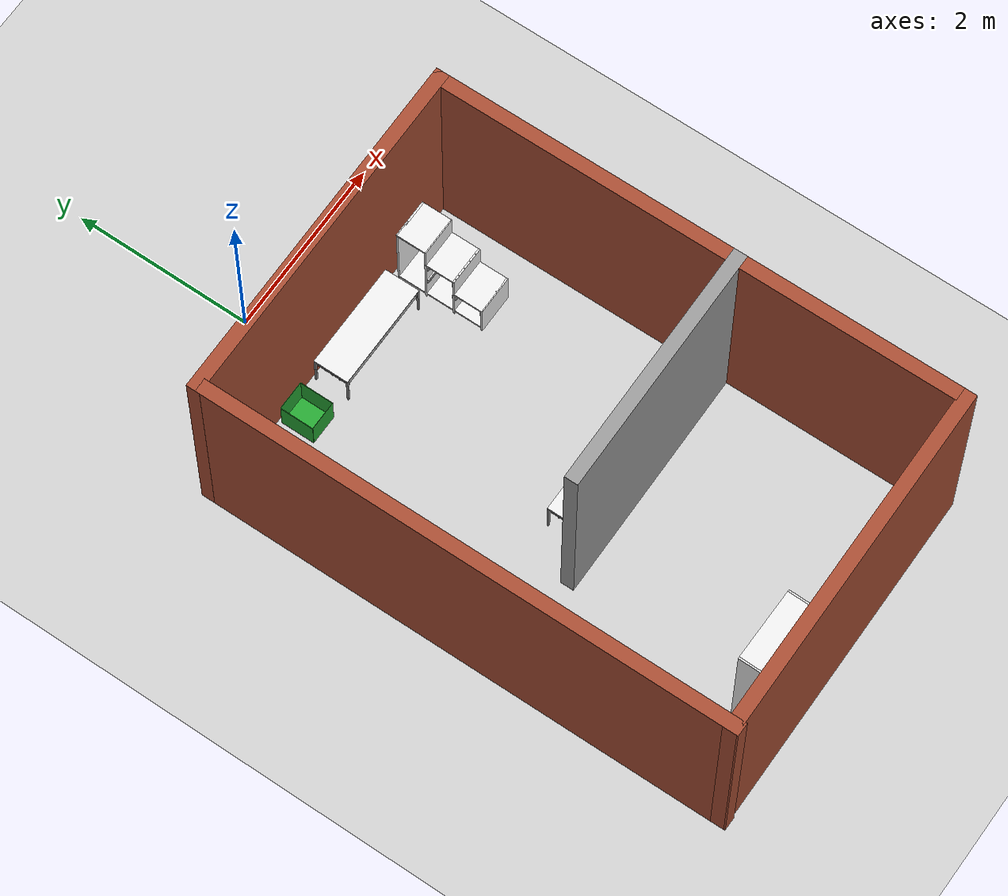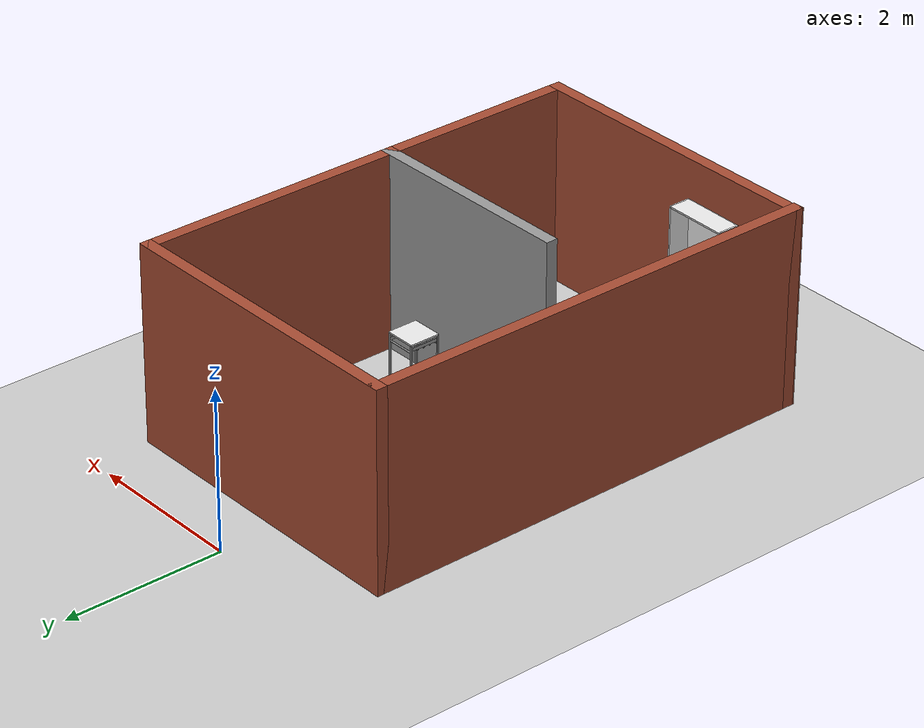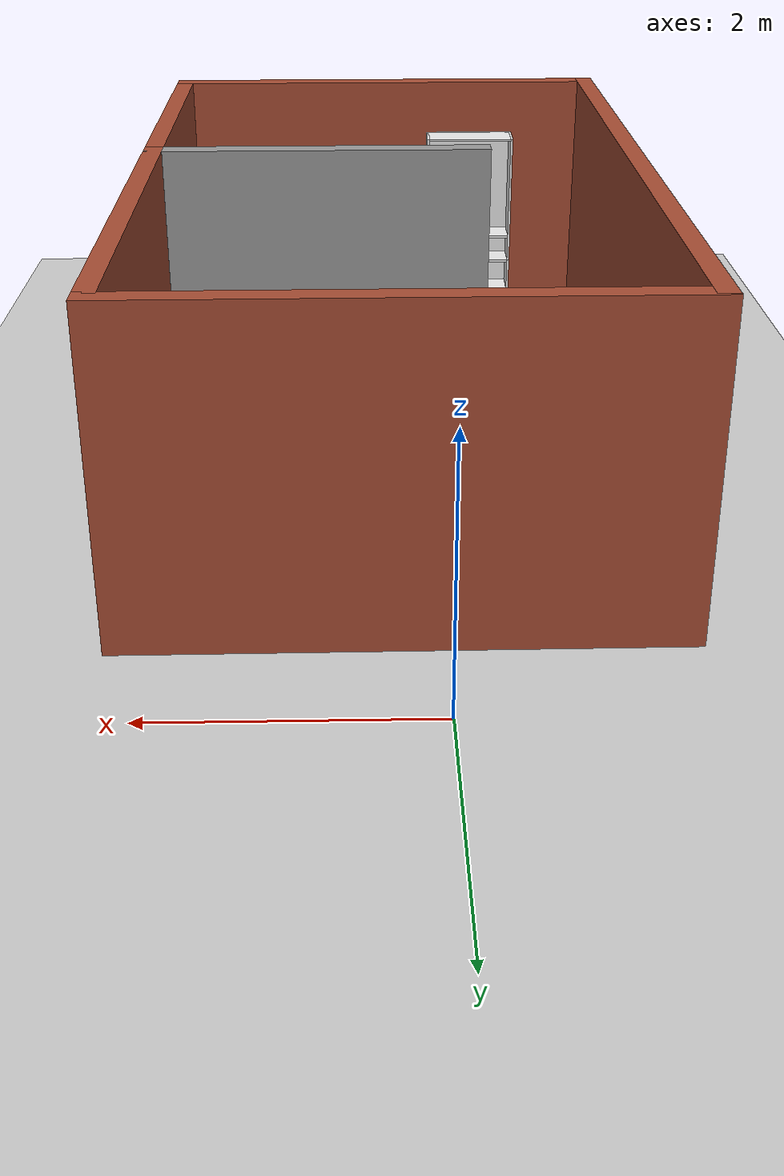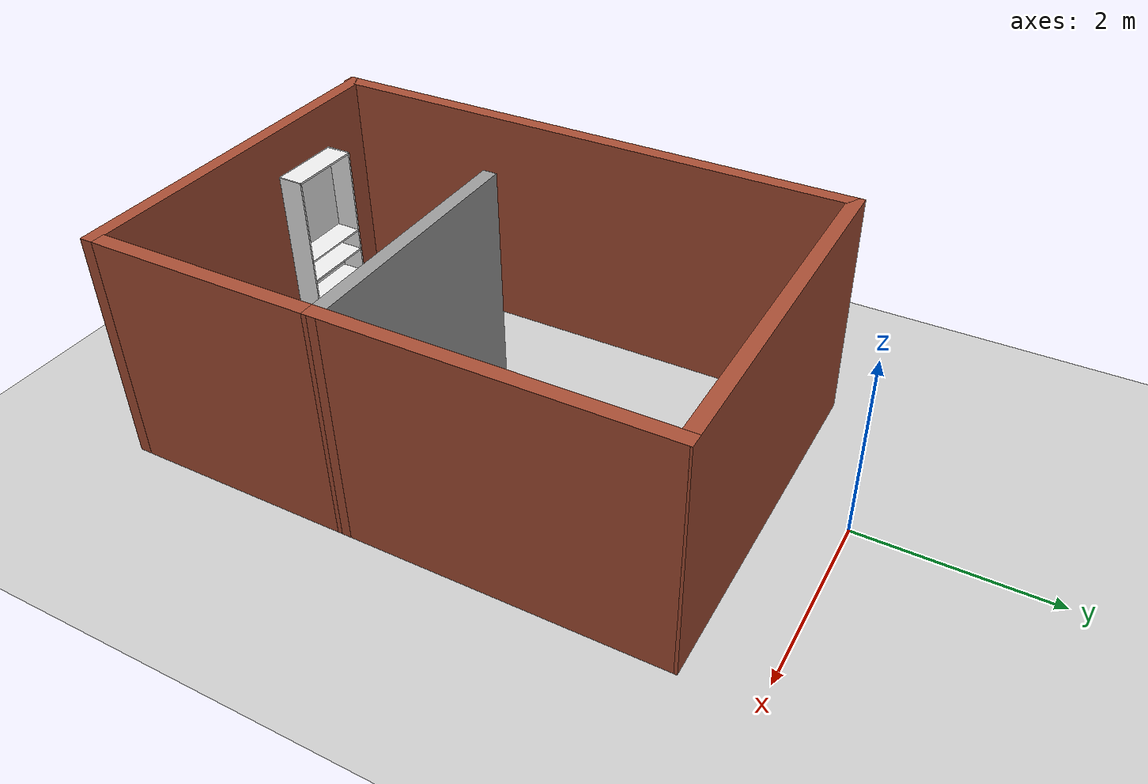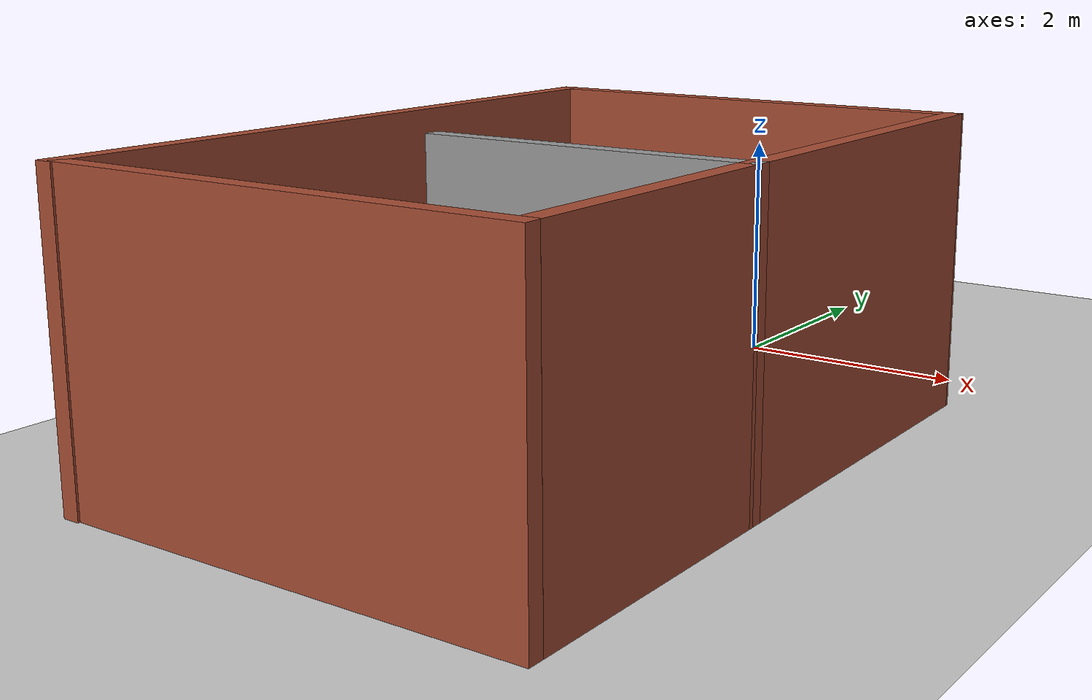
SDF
<sdf version="1.7">
 <world name="default">
  <light name="sun" type="directional">
   <pose>0 0 10 0 -0 0</pose>
   <diffuse>0.8 0.8 0.8 1</diffuse>
   <specular>0.2 0.2 0.2 1</specular>
   <attenuation>
    <range>1000</range>
    <constant>0.9</constant>
    <linear>0.01</linear>
    <quadratic>0.001</quadratic>
   </attenuation>
   <direction>-0.5 0.1 -0.9</direction>
   <spot><inner_angle>0</inner_angle><outer_angle>0</outer_angle><falloff>0</falloff></spot>
  </light>
  <model name="ground_plane">
   <static>1</static>
   <link name="link">
    <collision name="collision">
     <geometry><plane><normal>0 0 1</normal><size>100 100</size></plane></geometry>
     <surface><friction><ode><mu>100</mu><mu2>50</mu2></ode></friction></surface>
    </collision>
    <visual name="visual">
     <cast_shadows>0</cast_shadows>
     <geometry><plane><normal>0 0 1</normal><size>100 100</size></plane></geometry>
     <material>
      <script><uri>file://media/materials/scripts/gazebo.material</uri><name>Gazebo/Grey</name></script>
     </material>
    </visual>
   </link>
  </model>
  <gravity>0 0 -9.8</gravity>
  <magnetic_field>6e-06 2.3e-05 -4.2e-05</magnetic_field>
  <atmosphere type="adiabatic"/>
  <physics type="ode">
   <max_step_size>0.001</max_step_size>
   <real_time_factor>1</real_time_factor>
   <real_time_update_rate>1000</real_time_update_rate>
  </physics>
  <scene><ambient>0.4 0.4 0.4 1</ambient><background>0.7 0.7 0.7 1</background><shadows>1</shadows></scene>
  <spherical_coordinates>
   <surface_model>EARTH_WGS84</surface_model>
   <latitude_deg>0</latitude_deg>
   <longitude_deg>0</longitude_deg>
   <elevation>0</elevation>
   <heading_deg>0</heading_deg>
  </spherical_coordinates>
  <model name="robotic_lab">
   <pose>0.289032 -3.73876 0 0 0 -1.56694</pose>
   <link name="Wall_0">
    <collision name="Wall_0_Collision">
     <geometry><box><size>6 0.15 2.5</size></box></geometry>
     <pose>0 0 1.25 0 -0 0</pose>
    </collision>
    <visual name="Wall_0_Visual">
     <pose>0 0 1.25 0 -0 0</pose>
     <geometry><box><size>6 0.15 2.5</size></box></geometry>
     <material>
      <script><uri>file://media/materials/scripts/gazebo.material</uri><name>Gazebo/Bricks</name></script>
      <ambient>1 1 1 1</ambient>
     </material>
     <meta><layer>0</layer></meta>
    </visual>
    <pose>0.008745 -1.92514 0 0 -0 0</pose>
   </link>
   <link name="Wall_2">
    <collision name="Wall_2_Collision">
     <geometry><box><size>4 0.15 2.5</size></box></geometry>
     <pose>0 0 1.25 0 -0 0</pose>
    </collision>
    <visual name="Wall_2_Visual">
     <pose>0 0 1.25 0 -0 0</pose>
     <geometry><box><size>4 0.15 2.5</size></box></geometry>
     <material>
      <script><uri>file://media/materials/scripts/gazebo.material</uri><name>Gazebo/Bricks</name></script>
      <ambient>1 1 1 1</ambient>
     </material>
     <meta><layer>0</layer></meta>
    </visual>
    <pose>-2.93375 -0.000141 0 0 -0 1.5708</pose>
   </link>
   <link name="Wall_3">
    <collision name="Wall_3_Collision">
     <geometry><box><size>3.5 0.15 2.5</size></box></geometry>
     <pose>0 0 1.25 0 -0 0</pose>
    </collision>
    <visual name="Wall_3_Visual">
     <pose>0 0 1.25 0 -0 0</pose>
     <geometry><box><size>3.5 0.15 2.5</size></box></geometry>
     <material>
      <script><uri>file://media/materials/scripts/gazebo.material</uri><name>Gazebo/Bricks</name></script>
      <ambient>1 1 1 1</ambient>
     </material>
     <meta><layer>0</layer></meta>
    </visual>
    <pose>-1.25869 1.925 0 0 -0 8.2e-05</pose>
   </link>
   <link name="Wall_4">
    <collision name="Wall_4_Collision">
     <geometry><box><size>2.8 0.15 2.5</size></box></geometry>
     <pose>0 0 1.25 0 -0 0</pose>
    </collision>
    <visual name="Wall_4_Visual">
     <pose>0 0 1.25 0 -0 0</pose>
     <geometry><box><size>2.8 0.15 2.5</size></box></geometry>
     <material>
      <script><uri>file://media/materials/scripts/gazebo.material</uri><name>Gazebo/Grey</name></script>
      <ambient>1 1 1 1</ambient>
     </material>
     <meta><layer>0</layer></meta>
    </visual>
    <pose>0.416369 0.600135 0 0 -0 -1.5708</pose>
   </link>
   <link name="Wall_6">
    <collision name="Wall_6_Collision">
     <geometry><box><size>2.515 0.15 2.5</size></box></geometry>
     <pose>0 0 1.25 0 -0 0</pose>
    </collision>
    <visual name="Wall_6_Visual">
     <pose>0 0 1.25 0 -0 0</pose>
     <geometry><box><size>2.515 0.15 2.5</size></box></geometry>
     <material>
      <script><uri>file://media/materials/scripts/gazebo.material</uri><name>Gazebo/Bricks</name></script>
      <ambient>1 1 1 1</ambient>
     </material>
     <meta><layer>0</layer></meta>
    </visual>
    <pose>1.59887 1.92514 0 0 -0 0</pose>
   </link>
   <link name="Wall_8">
    <collision name="Wall_8_Collision">
     <geometry><box><size>4 0.15 2.5</size></box></geometry>
     <pose>0 0 1.25 0 -0 0</pose>
    </collision>
    <visual name="Wall_8_Visual">
     <pose>0 0 1.25 0 -0 0</pose>
     <geometry><box><size>4 0.15 2.5</size></box></geometry>
     <material>
      <script><uri>file://media/materials/scripts/gazebo.material</uri><name>Gazebo/Bricks</name></script>
      <ambient>1 1 1 1</ambient>
     </material>
     <meta><layer>0</layer></meta>
    </visual>
    <pose>2.91626 -0.000141 0 0 -0 1.5708</pose>
   </link>
   <static>1</static>
  </model>
  <model name="wrc_bin_black">
   <static>1</static>
   <link name="link">
    <inertial><mass>1</mass></inertial>
    <collision name="bottom">
     <pose>0 0 0.002 0 -0 0</pose>
     <geometry><box><size>0.33 0.38 0.004</size></box></geometry>
    </collision>
    <visual name="bottom_v">
     <pose>0 0 0.002 0 -0 0</pose>
     <geometry><box><size>0.33 0.38 0.004</size></box></geometry>
     <material>
      <script><uri>file://media/materials/scripts/gazebo.material</uri><name>Gazebo/Black</name></script>
     </material>
    </visual>
    <collision name="front">
     <pose>0 0.19 0.165 0 -0 0</pose>
     <geometry><box><size>0.33 0.004 0.33</size></box></geometry>
    </collision>
    <visual name="front_v">
     <pose>0 0.19 0.165 0 -0 0</pose>
     <geometry><box><size>0.33 0.004 0.33</size></box></geometry>
     <material>
      <script><uri>file://media/materials/scripts/gazebo.material</uri><name>Gazebo/Black</name></script>
     </material>
    </visual>
    <collision name="back">
     <pose>0 -0.19 0.165 0 -0 0</pose>
     <geometry><box><size>0.33 0.004 0.33</size></box></geometry>
    </collision>
    <visual name="back_v">
     <pose>0 -0.19 0.165 0 -0 0</pose>
     <geometry><box><size>0.33 0.004 0.33</size></box></geometry>
     <material>
      <script><uri>file://media/materials/scripts/gazebo.material</uri><name>Gazebo/Black</name></script>
     </material>
    </visual>
    <collision name="left">
     <pose>0.165 0 0.165 0 -0 0</pose>
     <geometry><box><size>0.004 0.38 0.33</size></box></geometry>
    </collision>
    <visual name="left_v">
     <pose>0.165 0 0.165 0 -0 0</pose>
     <geometry><box><size>0.004 0.38 0.33</size></box></geometry>
     <material>
      <script><uri>file://media/materials/scripts/gazebo.material</uri><name>Gazebo/Black</name></script>
     </material>
    </visual>
    <collision name="right">
     <pose>-0.165 0 0.165 0 -0 0</pose>
     <geometry><box><size>0.004 0.38 0.33</size></box></geometry>
    </collision>
    <visual name="right_v">
     <pose>-0.165 0 0.165 0 -0 0</pose>
     <geometry><box><size>0.004 0.38 0.33</size></box></geometry>
     <material>
      <script><uri>file://media/materials/scripts/gazebo.material</uri><name>Gazebo/Black</name></script>
     </material>
    </visual>
   </link>
   <pose>-1.0023 -1.10353 0 0 -0 0</pose>
  </model>
  <model name="wrc_bin_green">
   <static>1</static>
   <link name="link">
    <inertial><mass>1</mass></inertial>
    <collision name="bottom">
     <pose>0 0 0.002 0 -0 0</pose>
     <geometry><box><size>0.33 0.38 0.004</size></box></geometry>
    </collision>
    <visual name="bottom_v">
     <pose>0 0 0.002 0 -0 0</pose>
     <geometry><box><size>0.33 0.38 0.004</size></box></geometry>
     <material>
      <script><uri>file://media/materials/scripts/gazebo.material</uri><name>Gazebo/Green</name></script>
     </material>
    </visual>
    <collision name="front">
     <pose>0 0.19 0.165 0 -0 0</pose>
     <geometry><box><size>0.33 0.004 0.33</size></box></geometry>
    </collision>
    <visual name="front_v">
     <pose>0 0.19 0.165 0 -0 0</pose>
     <geometry><box><size>0.33 0.004 0.33</size></box></geometry>
     <material>
      <script><uri>file://media/materials/scripts/gazebo.material</uri><name>Gazebo/Green</name></script>
     </material>
    </visual>
    <collision name="back">
     <pose>0 -0.19 0.165 0 -0 0</pose>
     <geometry><box><size>0.33 0.004 0.33</size></box></geometry>
    </collision>
    <visual name="back_v">
     <pose>0 -0.19 0.165 0 -0 0</pose>
     <geometry><box><size>0.33 0.004 0.33</size></box></geometry>
     <material>
      <script><uri>file://media/materials/scripts/gazebo.material</uri><name>Gazebo/Green</name></script>
     </material>
    </visual>
    <collision name="left">
     <pose>0.165 0 0.165 0 -0 0</pose>
     <geometry><box><size>0.004 0.38 0.33</size></box></geometry>
    </collision>
    <visual name="left_v">
     <pose>0.165 0 0.165 0 -0 0</pose>
     <geometry><box><size>0.004 0.38 0.33</size></box></geometry>
     <material>
      <script><uri>file://media/materials/scripts/gazebo.material</uri><name>Gazebo/Green</name></script>
     </material>
    </visual>
    <collision name="right">
     <pose>-0.165 0 0.165 0 -0 0</pose>
     <geometry><box><size>0.004 0.38 0.33</size></box></geometry>
    </collision>
    <visual name="right_v">
     <pose>-0.165 0 0.165 0 -0 0</pose>
     <geometry><box><size>0.004 0.38 0.33</size></box></geometry>
     <material>
      <script><uri>file://media/materials/scripts/gazebo.material</uri><name>Gazebo/Green</name></script>
     </material>
    </visual>
   </link>
   <pose>-0.500221 -1.11173 0 0 -0 0</pose>
  </model>
  <model name="wrc_long_table">
   <static>1</static>
   <link name="link">
    <inertial><mass>1</mass></inertial>
    <collision name="top">
     <pose>0 0 0.39 0 -0 0</pose>
     <geometry><box><size>1.2 0.4 0.02</size></box></geometry>
    </collision>
    <visual name="top_v">
     <pose>0 0 0.39 0 -0 0</pose>
     <geometry><box><size>1.2 0.4 0.02</size></box></geometry>
     <material>
      <script><uri>file://media/materials/scripts/gazebo.material</uri><name>Gazebo/White</name></script>
     </material>
    </visual>
    <collision name="leg1">
     <pose>0.59 0.19 0.185 0 -0 0</pose>
     <geometry><box><size>0.02 0.02 0.4</size></box></geometry>
    </collision>
    <visual name="leg1_v">
     <pose>0.59 0.19 0.185 0 -0 0</pose>
     <geometry><box><size>0.02 0.02 0.4</size></box></geometry>
     <material>
      <script><uri>file://media/materials/scripts/gazebo.material</uri><name>Gazebo/Gray</name></script>
     </material>
    </visual>
    <collision name="leg2">
     <pose>-0.59 0.19 0.185 0 -0 0</pose>
     <geometry><box><size>0.02 0.02 0.4</size></box></geometry>
    </collision>
    <visual name="leg2_v">
     <pose>-0.59 0.19 0.185 0 -0 0</pose>
     <geometry><box><size>0.02 0.02 0.4</size></box></geometry>
     <material>
      <script><uri>file://media/materials/scripts/gazebo.material</uri><name>Gazebo/Gray</name></script>
     </material>
    </visual>
    <collision name="leg3">
     <pose>0.59 -0.19 0.185 0 -0 0</pose>
     <geometry><box><size>0.02 0.02 0.4</size></box></geometry>
    </collision>
    <visual name="leg3_v">
     <pose>0.59 -0.19 0.185 0 -0 0</pose>
     <geometry><box><size>0.02 0.02 0.4</size></box></geometry>
     <material>
      <script><uri>file://media/materials/scripts/gazebo.material</uri><name>Gazebo/Gray</name></script>
     </material>
    </visual>
    <collision name="leg4">
     <pose>-0.59 -0.19 0.185 0 -0 0</pose>
     <geometry><box><size>0.02 0.02 0.4</size></box></geometry>
    </collision>
    <visual name="leg4_v">
     <pose>-0.59 -0.19 0.185 0 -0 0</pose>
     <geometry><box><size>0.02 0.02 0.4</size></box></geometry>
     <material>
      <script><uri>file://media/materials/scripts/gazebo.material</uri><name>Gazebo/Gray</name></script>
     </material>
    </visual>
    <collision name="side_panel1">
     <pose>0.575 0 0.32 0 -0 0</pose>
     <geometry><box><size>0.01 0.4 0.04</size></box></geometry>
    </collision>
    <visual name="side_panel1_v">
     <pose>0.575 0 0.32 0 -0 0</pose>
     <geometry><box><size>0.01 0.4 0.04</size></box></geometry>
     <material>
      <script><uri>file://media/materials/scripts/gazebo.material</uri><name>Gazebo/Gray</name></script>
     </material>
    </visual>
    <collision name="side_panel2">
     <pose>-0.575 0 0.32 0 -0 0</pose>
     <geometry><box><size>0.01 0.4 0.04</size></box></geometry>
    </collision>
    <visual name="side_panel2_v">
     <pose>-0.575 0 0.32 0 -0 0</pose>
     <geometry><box><size>0.01 0.4 0.04</size></box></geometry>
     <material>
      <script><uri>file://media/materials/scripts/gazebo.material</uri><name>Gazebo/Gray</name></script>
     </material>
    </visual>
    <collision name="bar1">
     <pose>0 0.2 0.29 0 1.57 0</pose>
     <geometry><cylinder><radius>0.01</radius><length>1.16</length></cylinder></geometry>
    </collision>
    <visual name="bar1_v">
     <pose>0 0.19 0.29 0 1.57 0</pose>
     <geometry><cylinder><radius>0.01</radius><length>1.16</length></cylinder></geometry>
     <material>
      <script><uri>file://media/materials/scripts/gazebo.material</uri><name>Gazebo/Gray</name></script>
     </material>
    </visual>
    <collision name="bar2">
     <pose>0 0.08 0.29 0 1.57 0</pose>
     <geometry><cylinder><radius>0.01</radius><length>1.16</length></cylinder></geometry>
    </collision>
    <visual name="bar2_v">
     <pose>0 0.08 0.29 0 1.57 0</pose>
     <geometry><cylinder><radius>0.01</radius><length>1.16</length></cylinder></geometry>
     <material>
      <script><uri>file://media/materials/scripts/gazebo.material</uri><name>Gazebo/Gray</name></script>
     </material>
    </visual>
    <collision name="bar3">
     <pose>0 0 0.29 0 1.57 0</pose>
     <geometry><cylinder><radius>0.01</radius><length>1.16</length></cylinder></geometry>
    </collision>
    <visual name="bar3_v">
     <pose>0 0 0.29 0 1.57 0</pose>
     <geometry><cylinder><radius>0.01</radius><length>1.16</length></cylinder></geometry>
     <material>
      <script><uri>file://media/materials/scripts/gazebo.material</uri><name>Gazebo/Gray</name></script>
     </material>
    </visual>
    <collision name="bar4">
     <pose>0 -0.08 0.29 0 1.57 0</pose>
     <geometry><cylinder><radius>0.01</radius><length>1.16</length></cylinder></geometry>
    </collision>
    <visual name="bar4_v">
     <pose>0 -0.09 0.29 0 1.57 0</pose>
     <geometry><cylinder><radius>0.01</radius><length>1.16</length></cylinder></geometry>
     <material>
      <script><uri>file://media/materials/scripts/gazebo.material</uri><name>Gazebo/Gray</name></script>
     </material>
    </visual>
    <collision name="bar5">
     <pose>0 -0.18 0.29 0 1.57 0</pose>
     <geometry><cylinder><radius>0.01</radius><length>1.16</length></cylinder></geometry>
    </collision>
    <visual name="bar5_v">
     <pose>0 -0.18 0.29 0 1.57 0</pose>
     <geometry><cylinder><radius>0.01</radius><length>1.16</length></cylinder></geometry>
     <material>
      <script><uri>file://media/materials/scripts/gazebo.material</uri><name>Gazebo/Gray</name></script>
     </material>
    </visual>
   </link>
   <pose>0.499277 -1.11247 0 0 -0 0</pose>
  </model>
  <model name="wrc_long_table_0">
   <static>1</static>
   <link name="link">
    <inertial><mass>1</mass></inertial>
    <collision name="top">
     <pose>0 0 0.39 0 -0 0</pose>
     <geometry><box><size>1.2 0.4 0.02</size></box></geometry>
    </collision>
    <visual name="top_v">
     <pose>0 0 0.39 0 -0 0</pose>
     <geometry><box><size>1.2 0.4 0.02</size></box></geometry>
     <material>
      <script><uri>file://media/materials/scripts/gazebo.material</uri><name>Gazebo/White</name></script>
     </material>
    </visual>
    <collision name="leg1">
     <pose>0.59 0.19 0.185 0 -0 0</pose>
     <geometry><box><size>0.02 0.02 0.4</size></box></geometry>
    </collision>
    <visual name="leg1_v">
     <pose>0.59 0.19 0.185 0 -0 0</pose>
     <geometry><box><size>0.02 0.02 0.4</size></box></geometry>
     <material>
      <script><uri>file://media/materials/scripts/gazebo.material</uri><name>Gazebo/Gray</name></script>
     </material>
    </visual>
    <collision name="leg2">
     <pose>-0.59 0.19 0.185 0 -0 0</pose>
     <geometry><box><size>0.02 0.02 0.4</size></box></geometry>
    </collision>
    <visual name="leg2_v">
     <pose>-0.59 0.19 0.185 0 -0 0</pose>
     <geometry><box><size>0.02 0.02 0.4</size></box></geometry>
     <material>
      <script><uri>file://media/materials/scripts/gazebo.material</uri><name>Gazebo/Gray</name></script>
     </material>
    </visual>
    <collision name="leg3">
     <pose>0.59 -0.19 0.185 0 -0 0</pose>
     <geometry><box><size>0.02 0.02 0.4</size></box></geometry>
    </collision>
    <visual name="leg3_v">
     <pose>0.59 -0.19 0.185 0 -0 0</pose>
     <geometry><box><size>0.02 0.02 0.4</size></box></geometry>
     <material>
      <script><uri>file://media/materials/scripts/gazebo.material</uri><name>Gazebo/Gray</name></script>
     </material>
    </visual>
    <collision name="leg4">
     <pose>-0.59 -0.19 0.185 0 -0 0</pose>
     <geometry><box><size>0.02 0.02 0.4</size></box></geometry>
    </collision>
    <visual name="leg4_v">
     <pose>-0.59 -0.19 0.185 0 -0 0</pose>
     <geometry><box><size>0.02 0.02 0.4</size></box></geometry>
     <material>
      <script><uri>file://media/materials/scripts/gazebo.material</uri><name>Gazebo/Gray</name></script>
     </material>
    </visual>
    <collision name="side_panel1">
     <pose>0.575 0 0.32 0 -0 0</pose>
     <geometry><box><size>0.01 0.4 0.04</size></box></geometry>
    </collision>
    <visual name="side_panel1_v">
     <pose>0.575 0 0.32 0 -0 0</pose>
     <geometry><box><size>0.01 0.4 0.04</size></box></geometry>
     <material>
      <script><uri>file://media/materials/scripts/gazebo.material</uri><name>Gazebo/Gray</name></script>
     </material>
    </visual>
    <collision name="side_panel2">
     <pose>-0.575 0 0.32 0 -0 0</pose>
     <geometry><box><size>0.01 0.4 0.04</size></box></geometry>
    </collision>
    <visual name="side_panel2_v">
     <pose>-0.575 0 0.32 0 -0 0</pose>
     <geometry><box><size>0.01 0.4 0.04</size></box></geometry>
     <material>
      <script><uri>file://media/materials/scripts/gazebo.material</uri><name>Gazebo/Gray</name></script>
     </material>
    </visual>
    <collision name="bar1">
     <pose>0 0.2 0.29 0 1.57 0</pose>
     <geometry><cylinder><radius>0.01</radius><length>1.16</length></cylinder></geometry>
    </collision>
    <visual name="bar1_v">
     <pose>0 0.19 0.29 0 1.57 0</pose>
     <geometry><cylinder><radius>0.01</radius><length>1.16</length></cylinder></geometry>
     <material>
      <script><uri>file://media/materials/scripts/gazebo.material</uri><name>Gazebo/Gray</name></script>
     </material>
    </visual>
    <collision name="bar2">
     <pose>0 0.08 0.29 0 1.57 0</pose>
     <geometry><cylinder><radius>0.01</radius><length>1.16</length></cylinder></geometry>
    </collision>
    <visual name="bar2_v">
     <pose>0 0.08 0.29 0 1.57 0</pose>
     <geometry><cylinder><radius>0.01</radius><length>1.16</length></cylinder></geometry>
     <material>
      <script><uri>file://media/materials/scripts/gazebo.material</uri><name>Gazebo/Gray</name></script>
     </material>
    </visual>
    <collision name="bar3">
     <pose>0 0 0.29 0 1.57 0</pose>
     <geometry><cylinder><radius>0.01</radius><length>1.16</length></cylinder></geometry>
    </collision>
    <visual name="bar3_v">
     <pose>0 0 0.29 0 1.57 0</pose>
     <geometry><cylinder><radius>0.01</radius><length>1.16</length></cylinder></geometry>
     <material>
      <script><uri>file://media/materials/scripts/gazebo.material</uri><name>Gazebo/Gray</name></script>
     </material>
    </visual>
    <collision name="bar4">
     <pose>0 -0.08 0.29 0 1.57 0</pose>
     <geometry><cylinder><radius>0.01</radius><length>1.16</length></cylinder></geometry>
    </collision>
    <visual name="bar4_v">
     <pose>0 -0.09 0.29 0 1.57 0</pose>
     <geometry><cylinder><radius>0.01</radius><length>1.16</length></cylinder></geometry>
     <material>
      <script><uri>file://media/materials/scripts/gazebo.material</uri><name>Gazebo/Gray</name></script>
     </material>
    </visual>
    <collision name="bar5">
     <pose>0 -0.18 0.29 0 1.57 0</pose>
     <geometry><cylinder><radius>0.01</radius><length>1.16</length></cylinder></geometry>
    </collision>
    <visual name="bar5_v">
     <pose>0 -0.18 0.29 0 1.57 0</pose>
     <geometry><cylinder><radius>0.01</radius><length>1.16</length></cylinder></geometry>
     <material>
      <script><uri>file://media/materials/scripts/gazebo.material</uri><name>Gazebo/Gray</name></script>
     </material>
    </visual>
   </link>
   <pose>0.508276 -3.83955 0 0 -0 0</pose>
  </model>
  <model name="wrc_tall_table">
   <static>1</static>
   <link name="link">
    <inertial><mass>1</mass></inertial>
    <collision name="top">
     <pose>0 0 0.59 0 -0 0</pose>
     <geometry><box><size>0.4 0.4 0.02</size></box></geometry>
    </collision>
    <visual name="top_v">
     <pose>0 0 0.59 0 -0 0</pose>
     <geometry><box><size>0.4 0.4 0.02</size></box></geometry>
     <material>
      <script><uri>file://media/materials/scripts/gazebo.material</uri><name>Gazebo/White</name></script>
     </material>
    </visual>
    <collision name="leg1">
     <pose>0.19 0.19 0.285 0 -0 0</pose>
     <geometry><box><size>0.02 0.02 0.6</size></box></geometry>
    </collision>
    <visual name="leg1_v">
     <pose>0.19 0.19 0.285 0 -0 0</pose>
     <geometry><box><size>0.02 0.02 0.6</size></box></geometry>
     <material>
      <script><uri>file://media/materials/scripts/gazebo.material</uri><name>Gazebo/Gray</name></script>
     </material>
    </visual>
    <collision name="leg2">
     <pose>-0.19 0.19 0.285 0 -0 0</pose>
     <geometry><box><size>0.02 0.02 0.6</size></box></geometry>
    </collision>
    <visual name="leg2_v">
     <pose>-0.19 0.19 0.285 0 -0 0</pose>
     <geometry><box><size>0.02 0.02 0.6</size></box></geometry>
     <material>
      <script><uri>file://media/materials/scripts/gazebo.material</uri><name>Gazebo/Gray</name></script>
     </material>
    </visual>
    <collision name="leg3">
     <pose>0.19 -0.19 0.285 0 -0 0</pose>
     <geometry><box><size>0.02 0.02 0.6</size></box></geometry>
    </collision>
    <visual name="leg3_v">
     <pose>0.19 -0.19 0.285 0 -0 0</pose>
     <geometry><box><size>0.02 0.02 0.6</size></box></geometry>
     <material>
      <script><uri>file://media/materials/scripts/gazebo.material</uri><name>Gazebo/Gray</name></script>
     </material>
    </visual>
    <collision name="leg4">
     <pose>-0.19 -0.19 0.285 0 -0 0</pose>
     <geometry><box><size>0.02 0.02 0.6</size></box></geometry>
    </collision>
    <visual name="leg4_v">
     <pose>-0.19 -0.19 0.285 0 -0 0</pose>
     <geometry><box><size>0.02 0.02 0.6</size></box></geometry>
     <material>
      <script><uri>file://media/materials/scripts/gazebo.material</uri><name>Gazebo/Gray</name></script>
     </material>
    </visual>
    <collision name="side_panel1">
     <pose>0.175 0 0.52 0 -0 0</pose>
     <geometry><box><size>0.01 0.4 0.04</size></box></geometry>
    </collision>
    <visual name="side_panel1_v">
     <pose>0.175 0 0.52 0 -0 0</pose>
     <geometry><box><size>0.01 0.4 0.04</size></box></geometry>
     <material>
      <script><uri>file://media/materials/scripts/gazebo.material</uri><name>Gazebo/Gray</name></script>
     </material>
    </visual>
    <collision name="side_panel2">
     <pose>-0.175 0 0.52 0 -0 0</pose>
     <geometry><box><size>0.01 0.4 0.04</size></box></geometry>
    </collision>
    <visual name="side_panel2_v">
     <pose>-0.175 0 0.52 0 -0 0</pose>
     <geometry><box><size>0.01 0.4 0.04</size></box></geometry>
     <material>
      <script><uri>file://media/materials/scripts/gazebo.material</uri><name>Gazebo/Gray</name></script>
     </material>
    </visual>
    <collision name="bar1">
     <pose>0 0.2 0.49 0 1.57 0</pose>
     <geometry><cylinder><radius>0.01</radius><length>0.36</length></cylinder></geometry>
    </collision>
    <visual name="bar1_v">
     <pose>0 0.19 0.49 0 1.57 0</pose>
     <geometry><cylinder><radius>0.01</radius><length>0.36</length></cylinder></geometry>
     <material>
      <script><uri>file://media/materials/scripts/gazebo.material</uri><name>Gazebo/Gray</name></script>
     </material>
    </visual>
    <collision name="bar2">
     <pose>0 0.08 0.49 0 1.57 0</pose>
     <geometry><cylinder><radius>0.01</radius><length>0.36</length></cylinder></geometry>
    </collision>
    <visual name="bar2_v">
     <pose>0 0.08 0.49 0 1.57 0</pose>
     <geometry><cylinder><radius>0.01</radius><length>0.36</length></cylinder></geometry>
     <material>
      <script><uri>file://media/materials/scripts/gazebo.material</uri><name>Gazebo/Gray</name></script>
     </material>
    </visual>
    <collision name="bar3">
     <pose>0 0 0.49 0 1.57 0</pose>
     <geometry><cylinder><radius>0.01</radius><length>0.36</length></cylinder></geometry>
    </collision>
    <visual name="bar3_v">
     <pose>0 0 0.49 0 1.57 0</pose>
     <geometry><cylinder><radius>0.01</radius><length>0.36</length></cylinder></geometry>
     <material>
      <script><uri>file://media/materials/scripts/gazebo.material</uri><name>Gazebo/Gray</name></script>
     </material>
    </visual>
    <collision name="bar4">
     <pose>0 -0.08 0.49 0 1.57 0</pose>
     <geometry><cylinder><radius>0.01</radius><length>0.36</length></cylinder></geometry>
    </collision>
    <visual name="bar4_v">
     <pose>0 -0.09 0.49 0 1.57 0</pose>
     <geometry><cylinder><radius>0.01</radius><length>0.36</length></cylinder></geometry>
     <material>
      <script><uri>file://media/materials/scripts/gazebo.material</uri><name>Gazebo/Gray</name></script>
     </material>
    </visual>
    <collision name="bar5">
     <pose>0 -0.18 0.49 0 1.57 0</pose>
     <geometry><cylinder><radius>0.01</radius><length>0.36</length></cylinder></geometry>
    </collision>
    <visual name="bar5_v">
     <pose>0 -0.18 0.49 0 1.57 0</pose>
     <geometry><cylinder><radius>0.01</radius><length>0.36</length></cylinder></geometry>
     <material>
      <script><uri>file://media/materials/scripts/gazebo.material</uri><name>Gazebo/Gray</name></script>
     </material>
    </visual>
   </link>
   <pose>1.44789 -3.84375 0 0 -0 0</pose>
  </model>
  <model name="wrc_bookshelf">
   <static>1</static>
   <link name="link">
    <inertial><mass>1</mass></inertial>
    <collision name="back">
     <pose>0 0.005 1.01 0 -0 0</pose>
     <geometry><box><size>0.8 0.01 2.02</size></box></geometry>
    </collision>
    <visual name="back_v">
     <pose>0 0.14 1.01 0 -0 0</pose>
     <geometry><box><size>0.8 0.01 2.02</size></box></geometry>
     <material>
      <script><uri>file://media/materials/scripts/gazebo.material</uri><name>Gazebo/White</name></script>
     </material>
    </visual>
    <collision name="left_side">
     <pose>0.4 0 1.01 0 -0 0</pose>
     <geometry><box><size>0.02 0.28 2.02</size></box></geometry>
    </collision>
    <visual name="left_side_v">
     <pose>0.4 0 1.01 0 -0 0</pose>
     <geometry><box><size>0.02 0.28 2.02</size></box></geometry>
     <material>
      <script><uri>file://media/materials/scripts/gazebo.material</uri><name>Gazebo/White</name></script>
     </material>
    </visual>
    <collision name="right_side">
     <pose>-0.4 0 1.01 0 -0 0</pose>
     <geometry><box><size>0.02 0.28 2.02</size></box></geometry>
    </collision>
    <visual name="right_side_v">
     <pose>-0.4 0 1.01 0 -0 0</pose>
     <geometry><box><size>0.02 0.28 2.02</size></box></geometry>
     <material>
      <script><uri>file://media/materials/scripts/gazebo.material</uri><name>Gazebo/White</name></script>
     </material>
    </visual>
    <collision name="bottom">
     <pose>0 0 0.03 0 -0 0</pose>
     <geometry><box><size>0.8 0.28 0.06</size></box></geometry>
    </collision>
    <visual name="bottom_v">
     <pose>0 0 0.03 0 -0 0</pose>
     <geometry><box><size>0.8 0.28 0.06</size></box></geometry>
     <material>
      <script><uri>file://media/materials/scripts/gazebo.material</uri><name>Gazebo/White</name></script>
     </material>
    </visual>
    <collision name="top">
     <pose>0 0 2.01 0 -0 0</pose>
     <geometry><box><size>0.8 0.28 0.02</size></box></geometry>
    </collision>
    <visual name="top_v">
     <pose>0 0 2.01 0 -0 0</pose>
     <geometry><box><size>0.8 0.28 0.02</size></box></geometry>
     <material>
      <script><uri>file://media/materials/scripts/gazebo.material</uri><name>Gazebo/White</name></script>
     </material>
    </visual>
    <collision name="slit1">
     <pose>0 0 0.49 0 -0 0</pose>
     <geometry><box><size>0.8 0.28 0.02</size></box></geometry>
    </collision>
    <visual name="slit1_v">
     <pose>0 0 0.49 0 -0 0</pose>
     <geometry><box><size>0.8 0.28 0.02</size></box></geometry>
     <material>
      <script><uri>file://media/materials/scripts/gazebo.material</uri><name>Gazebo/White</name></script>
     </material>
    </visual>
    <collision name="slit2">
     <pose>0 0 0.79 0 -0 0</pose>
     <geometry><box><size>0.8 0.28 0.02</size></box></geometry>
    </collision>
    <visual name="slit2_v">
     <pose>0 0 0.79 0 -0 0</pose>
     <geometry><box><size>0.8 0.28 0.02</size></box></geometry>
     <material>
      <script><uri>file://media/materials/scripts/gazebo.material</uri><name>Gazebo/White</name></script>
     </material>
    </visual>
    <collision name="slit3">
     <pose>0 0 1.04 0 -0 0</pose>
     <geometry><box><size>0.8 0.28 0.02</size></box></geometry>
    </collision>
    <visual name="slit3_v">
     <pose>0 0 1.04 0 -0 0</pose>
     <geometry><box><size>0.8 0.28 0.02</size></box></geometry>
     <material>
      <script><uri>file://media/materials/scripts/gazebo.material</uri><name>Gazebo/White</name></script>
     </material>
    </visual>
   </link>
   <pose>-0.505317 -6.40691 0 0 -0 3.12881</pose>
  </model>
  <model name="wrc_stair_like_drawer">
   <static>1</static>
   <link name="link">
    <inertial><mass>1</mass></inertial>
    <collision name="slit1">
     <pose>0 -0.495 0.21 0 -0 0</pose>
     <geometry><box><size>0.44 0.02 0.42</size></box></geometry>
    </collision>
    <visual name="slit1_v">
     <pose>0 -0.495 0.21 0 -0 0</pose>
     <geometry><box><size>0.44 0.02 0.42</size></box></geometry>
     <material>
      <script><uri>file://media/materials/scripts/gazebo.material</uri><name>Gazebo/White</name></script>
     </material>
    </visual>
    <collision name="holder_slit1_1_left_low">
     <pose>0 -0.48 0.3 0 -0 0</pose>
     <geometry><box><size>0.42 0.02 0.02</size></box></geometry>
    </collision>
    <visual name="holder_slit1_1_left_low_v">
     <pose>0 -0.48 0.3 0 -0 0</pose>
     <geometry><box><size>0.42 0.02 0.02</size></box></geometry>
     <material>
      <script><uri>file://media/materials/scripts/gazebo.material</uri><name>Gazebo/White</name></script>
     </material>
    </visual>
    <collision name="holder_slit1_1_left_high">
     <pose>0 -0.48 0.34 0 -0 0</pose>
     <geometry><box><size>0.42 0.02 0.02</size></box></geometry>
    </collision>
    <visual name="holder_slit1_1_left_high_v">
     <pose>0 -0.48 0.34 0 -0 0</pose>
     <geometry><box><size>0.42 0.02 0.02</size></box></geometry>
     <material>
      <script><uri>file://media/materials/scripts/gazebo.material</uri><name>Gazebo/White</name></script>
     </material>
    </visual>
    <collision name="holder_slit1_1_right_low">
     <pose>0 -0.18 0.3 0 -0 0</pose>
     <geometry><box><size>0.42 0.02 0.02</size></box></geometry>
    </collision>
    <visual name="holder_slit1_1_right_low_v">
     <pose>0 -0.18 0.3 0 -0 0</pose>
     <geometry><box><size>0.42 0.02 0.02</size></box></geometry>
     <material>
      <script><uri>file://media/materials/scripts/gazebo.material</uri><name>Gazebo/White</name></script>
     </material>
    </visual>
    <collision name="holder_slit1_1_right_high">
     <pose>0 -0.18 0.34 0 -0 0</pose>
     <geometry><box><size>0.42 0.02 0.02</size></box></geometry>
    </collision>
    <visual name="holder_slit1_1_right_high_v">
     <pose>0 -0.18 0.34 0 -0 0</pose>
     <geometry><box><size>0.42 0.02 0.02</size></box></geometry>
     <material>
      <script><uri>file://media/materials/scripts/gazebo.material</uri><name>Gazebo/White</name></script>
     </material>
    </visual>
    <collision name="slit2">
     <pose>0 -0.165 0.34 0 -0 0</pose>
     <geometry><box><size>0.44 0.02 0.68</size></box></geometry>
    </collision>
    <visual name="slit2_v">
     <pose>0 -0.165 0.34 0 -0 0</pose>
     <geometry><box><size>0.44 0.02 0.68</size></box></geometry>
     <material>
      <script><uri>file://media/materials/scripts/gazebo.material</uri><name>Gazebo/White</name></script>
     </material>
    </visual>
    <collision name="holder_slit2_1_left_low">
     <pose>0 -0.15 0.3 0 -0 0</pose>
     <geometry><box><size>0.42 0.02 0.02</size></box></geometry>
    </collision>
    <visual name="holder_slit2_1_left_low_v">
     <pose>0 -0.15 0.3 0 -0 0</pose>
     <geometry><box><size>0.42 0.02 0.02</size></box></geometry>
     <material>
      <script><uri>file://media/materials/scripts/gazebo.material</uri><name>Gazebo/White</name></script>
     </material>
    </visual>
    <collision name="holder_slit2_1_left_high">
     <pose>0 -0.15 0.34 0 -0 0</pose>
     <geometry><box><size>0.42 0.02 0.02</size></box></geometry>
    </collision>
    <visual name="holder_slit2_1_left_high_v">
     <pose>0 -0.15 0.34 0 -0 0</pose>
     <geometry><box><size>0.42 0.02 0.02</size></box></geometry>
     <material>
      <script><uri>file://media/materials/scripts/gazebo.material</uri><name>Gazebo/White</name></script>
     </material>
    </visual>
    <collision name="holder_slit2_1_right_low">
     <pose>0 0.15 0.3 0 -0 0</pose>
     <geometry><box><size>0.42 0.02 0.02</size></box></geometry>
    </collision>
    <visual name="holder_slit2_1_right_low_v">
     <pose>0 0.15 0.3 0 -0 0</pose>
     <geometry><box><size>0.42 0.02 0.02</size></box></geometry>
     <material>
      <script><uri>file://media/materials/scripts/gazebo.material</uri><name>Gazebo/White</name></script>
     </material>
    </visual>
    <collision name="holder_slit2_1_right_high">
     <pose>0 0.15 0.34 0 -0 0</pose>
     <geometry><box><size>0.42 0.02 0.02</size></box></geometry>
    </collision>
    <visual name="holder_slit2_1_right_high_v">
     <pose>0 0.15 0.34 0 -0 0</pose>
     <geometry><box><size>0.42 0.02 0.02</size></box></geometry>
     <material>
      <script><uri>file://media/materials/scripts/gazebo.material</uri><name>Gazebo/White</name></script>
     </material>
    </visual>
    <collision name="holder_slit2_2_left_low">
     <pose>0 -0.15 0.56 0 -0 0</pose>
     <geometry><box><size>0.42 0.02 0.02</size></box></geometry>
    </collision>
    <visual name="holder_slit2_2_left_low_v">
     <pose>0 -0.15 0.56 0 -0 0</pose>
     <geometry><box><size>0.42 0.02 0.02</size></box></geometry>
     <material>
      <script><uri>file://media/materials/scripts/gazebo.material</uri><name>Gazebo/White</name></script>
     </material>
    </visual>
    <collision name="holder_slit2_2_left_high">
     <pose>0 -0.15 0.6 0 -0 0</pose>
     <geometry><box><size>0.42 0.02 0.02</size></box></geometry>
    </collision>
    <visual name="holder_slit2_2_left_high_v">
     <pose>0 -0.15 0.6 0 -0 0</pose>
     <geometry><box><size>0.42 0.02 0.02</size></box></geometry>
     <material>
      <script><uri>file://media/materials/scripts/gazebo.material</uri><name>Gazebo/White</name></script>
     </material>
    </visual>
    <collision name="holder_slit2_2_right_low">
     <pose>0 0.15 0.56 0 -0 0</pose>
     <geometry><box><size>0.42 0.02 0.02</size></box></geometry>
    </collision>
    <visual name="holder_slit2_2_right_low_v">
     <pose>0 0.15 0.56 0 -0 0</pose>
     <geometry><box><size>0.42 0.02 0.02</size></box></geometry>
     <material>
      <script><uri>file://media/materials/scripts/gazebo.material</uri><name>Gazebo/White</name></script>
     </material>
    </visual>
    <collision name="holder_slit2_2_right_high">
     <pose>0 0.15 0.6 0 -0 0</pose>
     <geometry><box><size>0.42 0.02 0.02</size></box></geometry>
    </collision>
    <visual name="holder_slit2_2_right_high_v">
     <pose>0 0.15 0.6 0 -0 0</pose>
     <geometry><box><size>0.42 0.02 0.02</size></box></geometry>
     <material>
      <script><uri>file://media/materials/scripts/gazebo.material</uri><name>Gazebo/White</name></script>
     </material>
    </visual>
    <collision name="slit3">
     <pose>0 0.165 0.47 0 -0 0</pose>
     <geometry><box><size>0.44 0.02 0.94</size></box></geometry>
    </collision>
    <visual name="slit3_v">
     <pose>0 0.165 0.47 0 -0 0</pose>
     <geometry><box><size>0.44 0.02 0.94</size></box></geometry>
     <material>
      <script><uri>file://media/materials/scripts/gazebo.material</uri><name>Gazebo/White</name></script>
     </material>
    </visual>
    <collision name="slit4">
     <pose>0 0.495 0.47 0 -0 0</pose>
     <geometry><box><size>0.44 0.02 0.94</size></box></geometry>
    </collision>
    <visual name="slit4_v">
     <pose>0 0.495 0.47 0 -0 0</pose>
     <geometry><box><size>0.44 0.02 0.94</size></box></geometry>
     <material>
      <script><uri>file://media/materials/scripts/gazebo.material</uri><name>Gazebo/White</name></script>
     </material>
    </visual>
    <collision name="top1">
     <pose>0 -0.33 0.41 0 -0 0</pose>
     <geometry><box><size>0.44 0.33 0.02</size></box></geometry>
    </collision>
    <visual name="top1_v">
     <pose>0 -0.33 0.41 0 -0 0</pose>
     <geometry><box><size>0.44 0.33 0.02</size></box></geometry>
     <material>
      <script><uri>file://media/materials/scripts/gazebo.material</uri><name>Gazebo/White</name></script>
     </material>
    </visual>
    <collision name="top1_front">
     <pose>0.21 -0.33 0.37 0 -0 0</pose>
     <geometry><box><size>0.02 0.33 0.06</size></box></geometry>
    </collision>
    <visual name="top1_front_v">
     <pose>0.21 -0.33 0.37 0 -0 0</pose>
     <geometry><box><size>0.02 0.33 0.06</size></box></geometry>
     <material>
      <script><uri>file://media/materials/scripts/gazebo.material</uri><name>Gazebo/White</name></script>
     </material>
    </visual>
    <collision name="top2">
     <pose>0 0 0.67 0 -0 0</pose>
     <geometry><box><size>0.44 0.33 0.02</size></box></geometry>
    </collision>
    <visual name="top2_v">
     <pose>0 0 0.67 0 -0 0</pose>
     <geometry><box><size>0.44 0.33 0.02</size></box></geometry>
     <material>
      <script><uri>file://media/materials/scripts/gazebo.material</uri><name>Gazebo/White</name></script>
     </material>
    </visual>
    <collision name="top2_front">
     <pose>0.21 0 0.63 0 -0 0</pose>
     <geometry><box><size>0.02 0.33 0.06</size></box></geometry>
    </collision>
    <visual name="top2_front_v">
     <pose>0.21 0 0.63 0 -0 0</pose>
     <geometry><box><size>0.02 0.33 0.06</size></box></geometry>
     <material>
      <script><uri>file://media/materials/scripts/gazebo.material</uri><name>Gazebo/White</name></script>
     </material>
    </visual>
    <collision name="top3">
     <pose>0 0.33 0.93 0 -0 0</pose>
     <geometry><box><size>0.44 0.33 0.02</size></box></geometry>
    </collision>
    <visual name="top3_v">
     <pose>0 0.33 0.93 0 -0 0</pose>
     <geometry><box><size>0.44 0.33 0.02</size></box></geometry>
     <material>
      <script><uri>file://media/materials/scripts/gazebo.material</uri><name>Gazebo/White</name></script>
     </material>
    </visual>
    <collision name="top3_front">
     <pose>0.21 0.33 0.89 0 -0 0</pose>
     <geometry><box><size>0.02 0.33 0.06</size></box></geometry>
    </collision>
    <visual name="top3_front_v">
     <pose>0.21 0.33 0.89 0 -0 0</pose>
     <geometry><box><size>0.02 0.33 0.06</size></box></geometry>
     <material>
      <script><uri>file://media/materials/scripts/gazebo.material</uri><name>Gazebo/White</name></script>
     </material>
    </visual>
    <collision name="bottom">
     <pose>0 0 0.06 0 -0 0</pose>
     <geometry><box><size>0.44 0.99 0.02</size></box></geometry>
    </collision>
    <visual name="bottom_v">
     <pose>0 0 0.06 0 -0 0</pose>
     <geometry><box><size>0.44 0.99 0.02</size></box></geometry>
     <material>
      <script><uri>file://media/materials/scripts/gazebo.material</uri><name>Gazebo/White</name></script>
     </material>
    </visual>
   </link>
   <pose>1.4667 -1.451 0 0 -0 0</pose>
  </model>
 </world>
</sdf>
